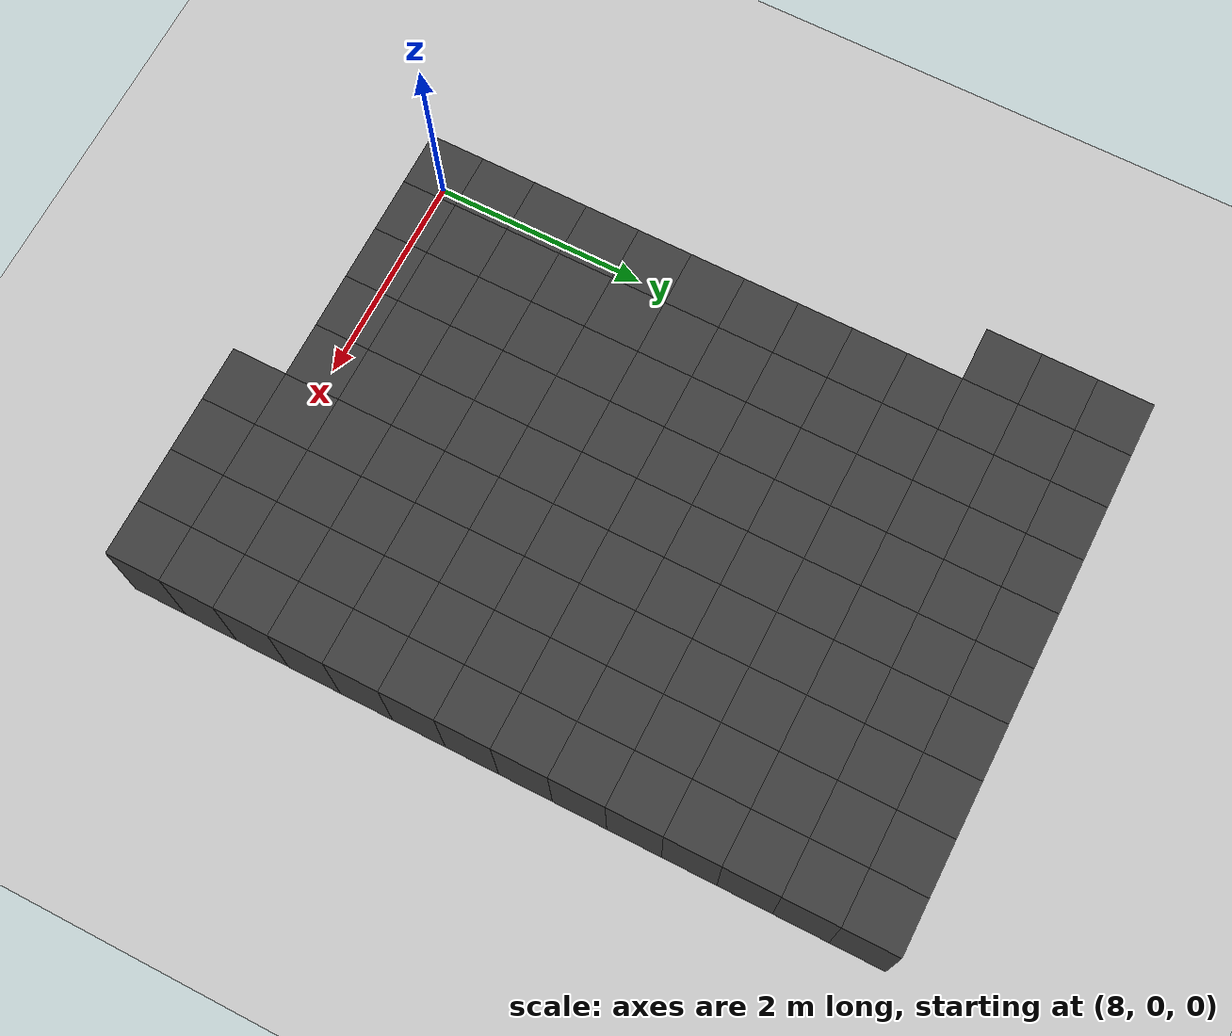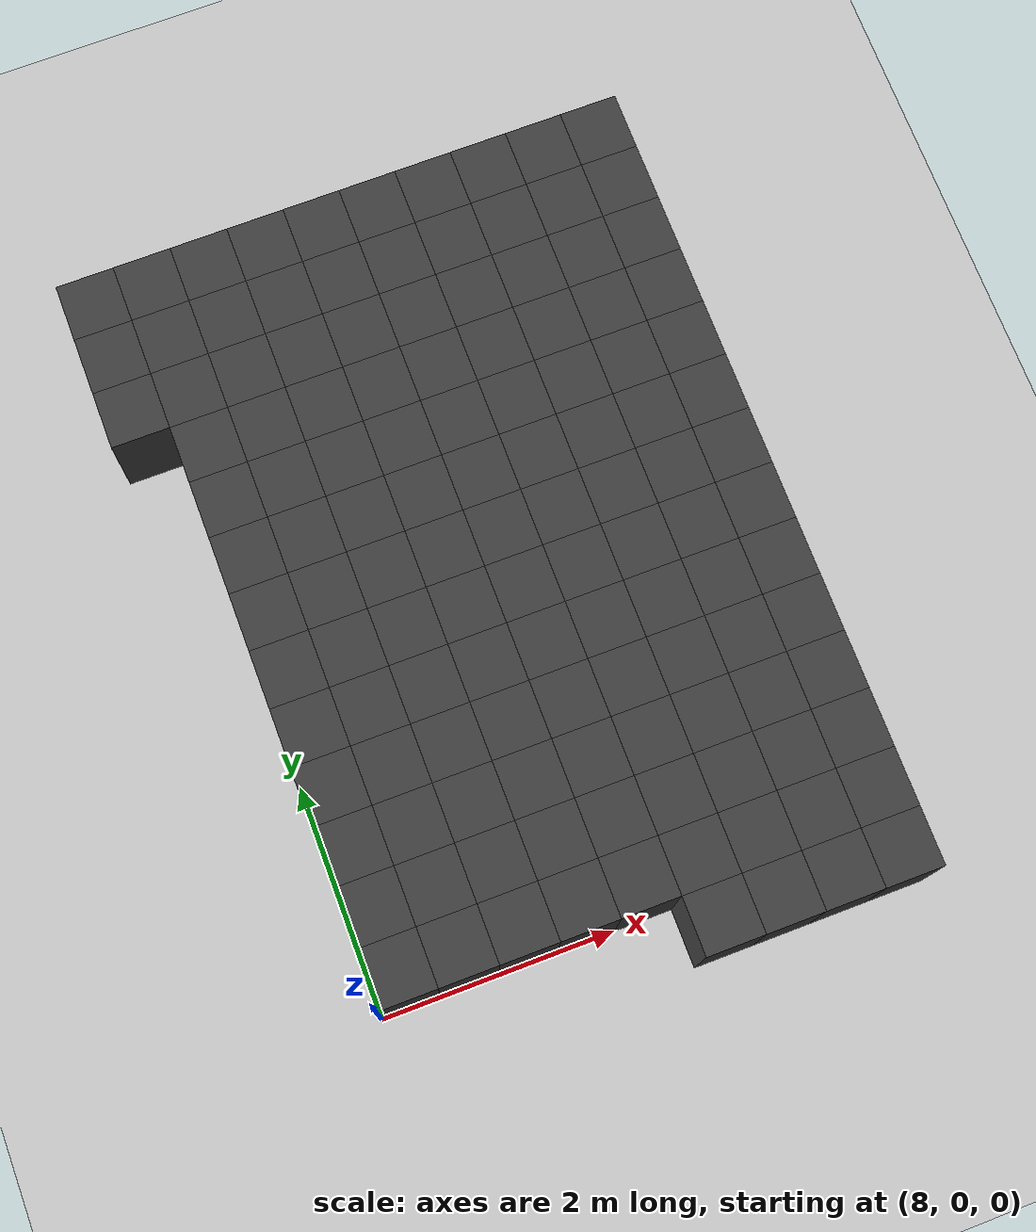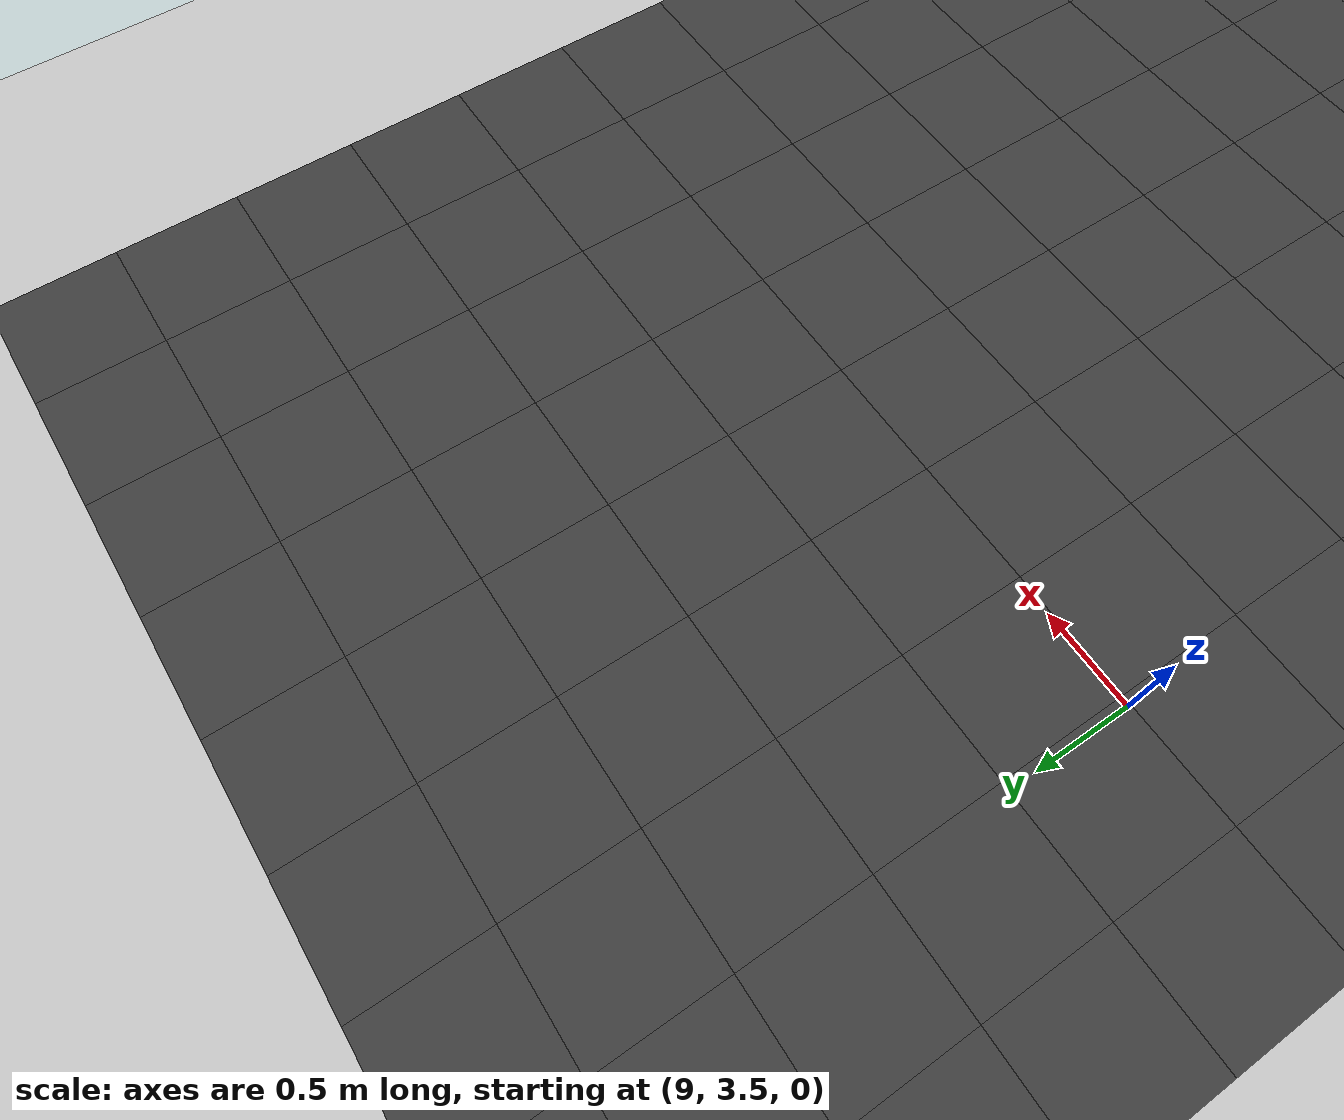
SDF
<sdf version="1.7">
 <world name="map_12818">
  <model name="ground_plane">
   <static>true</static>
   <link name="link">
    <collision name="collision">
     <geometry><plane><normal>0 0 1</normal><size>200 200</size></plane></geometry>
    </collision>
    <visual name="visual">
     <geometry><plane><normal>0 0 1</normal><size>200 200</size></plane></geometry>
     <material><ambient>0.8 0.8 0.8 1</ambient><diffuse>0.8 0.8 0.8 1</diffuse></material>
    </visual>
   </link>
  </model>
  <model name="maze_environment">
   <static>true</static>
   <link name="wall_599">
    <pose>7.750 6.250 0.500 0 0 0</pose>
    <collision name="col"><geometry><box><size>0.5 0.5 1.0</size></box></geometry></collision>
    <visual name="vis">
     <geometry><box><size>0.5 0.5 1.0</size></box></geometry>
     <material><ambient>0.15 0.15 0.15 1</ambient><diffuse>0.25 0.25 0.25 1</diffuse></material>
    </visual>
   </link>
   <link name="wall_600">
    <pose>8.250 6.250 0.500 0 0 0</pose>
    <collision name="col"><geometry><box><size>0.5 0.5 1.0</size></box></geometry></collision>
    <visual name="vis">
     <geometry><box><size>0.5 0.5 1.0</size></box></geometry>
     <material><ambient>0.15 0.15 0.15 1</ambient><diffuse>0.25 0.25 0.25 1</diffuse></material>
    </visual>
   </link>
   <link name="wall_601">
    <pose>8.750 6.250 0.500 0 0 0</pose>
    <collision name="col"><geometry><box><size>0.5 0.5 1.0</size></box></geometry></collision>
    <visual name="vis">
     <geometry><box><size>0.5 0.5 1.0</size></box></geometry>
     <material><ambient>0.15 0.15 0.15 1</ambient><diffuse>0.25 0.25 0.25 1</diffuse></material>
    </visual>
   </link>
   <link name="wall_602">
    <pose>9.250 6.250 0.500 0 0 0</pose>
    <collision name="col"><geometry><box><size>0.5 0.5 1.0</size></box></geometry></collision>
    <visual name="vis">
     <geometry><box><size>0.5 0.5 1.0</size></box></geometry>
     <material><ambient>0.15 0.15 0.15 1</ambient><diffuse>0.25 0.25 0.25 1</diffuse></material>
    </visual>
   </link>
   <link name="wall_603">
    <pose>9.750 6.250 0.500 0 0 0</pose>
    <collision name="col"><geometry><box><size>0.5 0.5 1.0</size></box></geometry></collision>
    <visual name="vis">
     <geometry><box><size>0.5 0.5 1.0</size></box></geometry>
     <material><ambient>0.15 0.15 0.15 1</ambient><diffuse>0.25 0.25 0.25 1</diffuse></material>
    </visual>
   </link>
   <link name="wall_604">
    <pose>10.250 6.250 0.500 0 0 0</pose>
    <collision name="col"><geometry><box><size>0.5 0.5 1.0</size></box></geometry></collision>
    <visual name="vis">
     <geometry><box><size>0.5 0.5 1.0</size></box></geometry>
     <material><ambient>0.15 0.15 0.15 1</ambient><diffuse>0.25 0.25 0.25 1</diffuse></material>
    </visual>
   </link>
   <link name="wall_605">
    <pose>10.750 6.250 0.500 0 0 0</pose>
    <collision name="col"><geometry><box><size>0.5 0.5 1.0</size></box></geometry></collision>
    <visual name="vis">
     <geometry><box><size>0.5 0.5 1.0</size></box></geometry>
     <material><ambient>0.15 0.15 0.15 1</ambient><diffuse>0.25 0.25 0.25 1</diffuse></material>
    </visual>
   </link>
   <link name="wall_606">
    <pose>11.250 6.250 0.500 0 0 0</pose>
    <collision name="col"><geometry><box><size>0.5 0.5 1.0</size></box></geometry></collision>
    <visual name="vis">
     <geometry><box><size>0.5 0.5 1.0</size></box></geometry>
     <material><ambient>0.15 0.15 0.15 1</ambient><diffuse>0.25 0.25 0.25 1</diffuse></material>
    </visual>
   </link>
   <link name="wall_607">
    <pose>11.750 6.250 0.500 0 0 0</pose>
    <collision name="col"><geometry><box><size>0.5 0.5 1.0</size></box></geometry></collision>
    <visual name="vis">
     <geometry><box><size>0.5 0.5 1.0</size></box></geometry>
     <material><ambient>0.15 0.15 0.15 1</ambient><diffuse>0.25 0.25 0.25 1</diffuse></material>
    </visual>
   </link>
   <link name="wall_608">
    <pose>12.250 6.250 0.500 0 0 0</pose>
    <collision name="col"><geometry><box><size>0.5 0.5 1.0</size></box></geometry></collision>
    <visual name="vis">
     <geometry><box><size>0.5 0.5 1.0</size></box></geometry>
     <material><ambient>0.15 0.15 0.15 1</ambient><diffuse>0.25 0.25 0.25 1</diffuse></material>
    </visual>
   </link>
   <link name="wall_647">
    <pose>7.750 5.750 0.500 0 0 0</pose>
    <collision name="col"><geometry><box><size>0.5 0.5 1.0</size></box></geometry></collision>
    <visual name="vis">
     <geometry><box><size>0.5 0.5 1.0</size></box></geometry>
     <material><ambient>0.15 0.15 0.15 1</ambient><diffuse>0.25 0.25 0.25 1</diffuse></material>
    </visual>
   </link>
   <link name="wall_648">
    <pose>8.250 5.750 0.500 0 0 0</pose>
    <collision name="col"><geometry><box><size>0.5 0.5 1.0</size></box></geometry></collision>
    <visual name="vis">
     <geometry><box><size>0.5 0.5 1.0</size></box></geometry>
     <material><ambient>0.15 0.15 0.15 1</ambient><diffuse>0.25 0.25 0.25 1</diffuse></material>
    </visual>
   </link>
   <link name="wall_649">
    <pose>8.750 5.750 0.500 0 0 0</pose>
    <collision name="col"><geometry><box><size>0.5 0.5 1.0</size></box></geometry></collision>
    <visual name="vis">
     <geometry><box><size>0.5 0.5 1.0</size></box></geometry>
     <material><ambient>0.15 0.15 0.15 1</ambient><diffuse>0.25 0.25 0.25 1</diffuse></material>
    </visual>
   </link>
   <link name="wall_650">
    <pose>9.250 5.750 0.500 0 0 0</pose>
    <collision name="col"><geometry><box><size>0.5 0.5 1.0</size></box></geometry></collision>
    <visual name="vis">
     <geometry><box><size>0.5 0.5 1.0</size></box></geometry>
     <material><ambient>0.15 0.15 0.15 1</ambient><diffuse>0.25 0.25 0.25 1</diffuse></material>
    </visual>
   </link>
   <link name="wall_651">
    <pose>9.750 5.750 0.500 0 0 0</pose>
    <collision name="col"><geometry><box><size>0.5 0.5 1.0</size></box></geometry></collision>
    <visual name="vis">
     <geometry><box><size>0.5 0.5 1.0</size></box></geometry>
     <material><ambient>0.15 0.15 0.15 1</ambient><diffuse>0.25 0.25 0.25 1</diffuse></material>
    </visual>
   </link>
   <link name="wall_652">
    <pose>10.250 5.750 0.500 0 0 0</pose>
    <collision name="col"><geometry><box><size>0.5 0.5 1.0</size></box></geometry></collision>
    <visual name="vis">
     <geometry><box><size>0.5 0.5 1.0</size></box></geometry>
     <material><ambient>0.15 0.15 0.15 1</ambient><diffuse>0.25 0.25 0.25 1</diffuse></material>
    </visual>
   </link>
   <link name="wall_653">
    <pose>10.750 5.750 0.500 0 0 0</pose>
    <collision name="col"><geometry><box><size>0.5 0.5 1.0</size></box></geometry></collision>
    <visual name="vis">
     <geometry><box><size>0.5 0.5 1.0</size></box></geometry>
     <material><ambient>0.15 0.15 0.15 1</ambient><diffuse>0.25 0.25 0.25 1</diffuse></material>
    </visual>
   </link>
   <link name="wall_654">
    <pose>11.250 5.750 0.500 0 0 0</pose>
    <collision name="col"><geometry><box><size>0.5 0.5 1.0</size></box></geometry></collision>
    <visual name="vis">
     <geometry><box><size>0.5 0.5 1.0</size></box></geometry>
     <material><ambient>0.15 0.15 0.15 1</ambient><diffuse>0.25 0.25 0.25 1</diffuse></material>
    </visual>
   </link>
   <link name="wall_655">
    <pose>11.750 5.750 0.500 0 0 0</pose>
    <collision name="col"><geometry><box><size>0.5 0.5 1.0</size></box></geometry></collision>
    <visual name="vis">
     <geometry><box><size>0.5 0.5 1.0</size></box></geometry>
     <material><ambient>0.15 0.15 0.15 1</ambient><diffuse>0.25 0.25 0.25 1</diffuse></material>
    </visual>
   </link>
   <link name="wall_656">
    <pose>12.250 5.750 0.500 0 0 0</pose>
    <collision name="col"><geometry><box><size>0.5 0.5 1.0</size></box></geometry></collision>
    <visual name="vis">
     <geometry><box><size>0.5 0.5 1.0</size></box></geometry>
     <material><ambient>0.15 0.15 0.15 1</ambient><diffuse>0.25 0.25 0.25 1</diffuse></material>
    </visual>
   </link>
   <link name="wall_695">
    <pose>7.750 5.250 0.500 0 0 0</pose>
    <collision name="col"><geometry><box><size>0.5 0.5 1.0</size></box></geometry></collision>
    <visual name="vis">
     <geometry><box><size>0.5 0.5 1.0</size></box></geometry>
     <material><ambient>0.15 0.15 0.15 1</ambient><diffuse>0.25 0.25 0.25 1</diffuse></material>
    </visual>
   </link>
   <link name="wall_696">
    <pose>8.250 5.250 0.500 0 0 0</pose>
    <collision name="col"><geometry><box><size>0.5 0.5 1.0</size></box></geometry></collision>
    <visual name="vis">
     <geometry><box><size>0.5 0.5 1.0</size></box></geometry>
     <material><ambient>0.15 0.15 0.15 1</ambient><diffuse>0.25 0.25 0.25 1</diffuse></material>
    </visual>
   </link>
   <link name="wall_697">
    <pose>8.750 5.250 0.500 0 0 0</pose>
    <collision name="col"><geometry><box><size>0.5 0.5 1.0</size></box></geometry></collision>
    <visual name="vis">
     <geometry><box><size>0.5 0.5 1.0</size></box></geometry>
     <material><ambient>0.15 0.15 0.15 1</ambient><diffuse>0.25 0.25 0.25 1</diffuse></material>
    </visual>
   </link>
   <link name="wall_698">
    <pose>9.250 5.250 0.500 0 0 0</pose>
    <collision name="col"><geometry><box><size>0.5 0.5 1.0</size></box></geometry></collision>
    <visual name="vis">
     <geometry><box><size>0.5 0.5 1.0</size></box></geometry>
     <material><ambient>0.15 0.15 0.15 1</ambient><diffuse>0.25 0.25 0.25 1</diffuse></material>
    </visual>
   </link>
   <link name="wall_699">
    <pose>9.750 5.250 0.500 0 0 0</pose>
    <collision name="col"><geometry><box><size>0.5 0.5 1.0</size></box></geometry></collision>
    <visual name="vis">
     <geometry><box><size>0.5 0.5 1.0</size></box></geometry>
     <material><ambient>0.15 0.15 0.15 1</ambient><diffuse>0.25 0.25 0.25 1</diffuse></material>
    </visual>
   </link>
   <link name="wall_700">
    <pose>10.250 5.250 0.500 0 0 0</pose>
    <collision name="col"><geometry><box><size>0.5 0.5 1.0</size></box></geometry></collision>
    <visual name="vis">
     <geometry><box><size>0.5 0.5 1.0</size></box></geometry>
     <material><ambient>0.15 0.15 0.15 1</ambient><diffuse>0.25 0.25 0.25 1</diffuse></material>
    </visual>
   </link>
   <link name="wall_701">
    <pose>10.750 5.250 0.500 0 0 0</pose>
    <collision name="col"><geometry><box><size>0.5 0.5 1.0</size></box></geometry></collision>
    <visual name="vis">
     <geometry><box><size>0.5 0.5 1.0</size></box></geometry>
     <material><ambient>0.15 0.15 0.15 1</ambient><diffuse>0.25 0.25 0.25 1</diffuse></material>
    </visual>
   </link>
   <link name="wall_702">
    <pose>11.250 5.250 0.500 0 0 0</pose>
    <collision name="col"><geometry><box><size>0.5 0.5 1.0</size></box></geometry></collision>
    <visual name="vis">
     <geometry><box><size>0.5 0.5 1.0</size></box></geometry>
     <material><ambient>0.15 0.15 0.15 1</ambient><diffuse>0.25 0.25 0.25 1</diffuse></material>
    </visual>
   </link>
   <link name="wall_703">
    <pose>11.750 5.250 0.500 0 0 0</pose>
    <collision name="col"><geometry><box><size>0.5 0.5 1.0</size></box></geometry></collision>
    <visual name="vis">
     <geometry><box><size>0.5 0.5 1.0</size></box></geometry>
     <material><ambient>0.15 0.15 0.15 1</ambient><diffuse>0.25 0.25 0.25 1</diffuse></material>
    </visual>
   </link>
   <link name="wall_704">
    <pose>12.250 5.250 0.500 0 0 0</pose>
    <collision name="col"><geometry><box><size>0.5 0.5 1.0</size></box></geometry></collision>
    <visual name="vis">
     <geometry><box><size>0.5 0.5 1.0</size></box></geometry>
     <material><ambient>0.15 0.15 0.15 1</ambient><diffuse>0.25 0.25 0.25 1</diffuse></material>
    </visual>
   </link>
   <link name="wall_744">
    <pose>8.250 4.750 0.500 0 0 0</pose>
    <collision name="col"><geometry><box><size>0.5 0.5 1.0</size></box></geometry></collision>
    <visual name="vis">
     <geometry><box><size>0.5 0.5 1.0</size></box></geometry>
     <material><ambient>0.15 0.15 0.15 1</ambient><diffuse>0.25 0.25 0.25 1</diffuse></material>
    </visual>
   </link>
   <link name="wall_745">
    <pose>8.750 4.750 0.500 0 0 0</pose>
    <collision name="col"><geometry><box><size>0.5 0.5 1.0</size></box></geometry></collision>
    <visual name="vis">
     <geometry><box><size>0.5 0.5 1.0</size></box></geometry>
     <material><ambient>0.15 0.15 0.15 1</ambient><diffuse>0.25 0.25 0.25 1</diffuse></material>
    </visual>
   </link>
   <link name="wall_746">
    <pose>9.250 4.750 0.500 0 0 0</pose>
    <collision name="col"><geometry><box><size>0.5 0.5 1.0</size></box></geometry></collision>
    <visual name="vis">
     <geometry><box><size>0.5 0.5 1.0</size></box></geometry>
     <material><ambient>0.15 0.15 0.15 1</ambient><diffuse>0.25 0.25 0.25 1</diffuse></material>
    </visual>
   </link>
   <link name="wall_747">
    <pose>9.750 4.750 0.500 0 0 0</pose>
    <collision name="col"><geometry><box><size>0.5 0.5 1.0</size></box></geometry></collision>
    <visual name="vis">
     <geometry><box><size>0.5 0.5 1.0</size></box></geometry>
     <material><ambient>0.15 0.15 0.15 1</ambient><diffuse>0.25 0.25 0.25 1</diffuse></material>
    </visual>
   </link>
   <link name="wall_748">
    <pose>10.250 4.750 0.500 0 0 0</pose>
    <collision name="col"><geometry><box><size>0.5 0.5 1.0</size></box></geometry></collision>
    <visual name="vis">
     <geometry><box><size>0.5 0.5 1.0</size></box></geometry>
     <material><ambient>0.15 0.15 0.15 1</ambient><diffuse>0.25 0.25 0.25 1</diffuse></material>
    </visual>
   </link>
   <link name="wall_749">
    <pose>10.750 4.750 0.500 0 0 0</pose>
    <collision name="col"><geometry><box><size>0.5 0.5 1.0</size></box></geometry></collision>
    <visual name="vis">
     <geometry><box><size>0.5 0.5 1.0</size></box></geometry>
     <material><ambient>0.15 0.15 0.15 1</ambient><diffuse>0.25 0.25 0.25 1</diffuse></material>
    </visual>
   </link>
   <link name="wall_750">
    <pose>11.250 4.750 0.500 0 0 0</pose>
    <collision name="col"><geometry><box><size>0.5 0.5 1.0</size></box></geometry></collision>
    <visual name="vis">
     <geometry><box><size>0.5 0.5 1.0</size></box></geometry>
     <material><ambient>0.15 0.15 0.15 1</ambient><diffuse>0.25 0.25 0.25 1</diffuse></material>
    </visual>
   </link>
   <link name="wall_751">
    <pose>11.750 4.750 0.500 0 0 0</pose>
    <collision name="col"><geometry><box><size>0.5 0.5 1.0</size></box></geometry></collision>
    <visual name="vis">
     <geometry><box><size>0.5 0.5 1.0</size></box></geometry>
     <material><ambient>0.15 0.15 0.15 1</ambient><diffuse>0.25 0.25 0.25 1</diffuse></material>
    </visual>
   </link>
   <link name="wall_752">
    <pose>12.250 4.750 0.500 0 0 0</pose>
    <collision name="col"><geometry><box><size>0.5 0.5 1.0</size></box></geometry></collision>
    <visual name="vis">
     <geometry><box><size>0.5 0.5 1.0</size></box></geometry>
     <material><ambient>0.15 0.15 0.15 1</ambient><diffuse>0.25 0.25 0.25 1</diffuse></material>
    </visual>
   </link>
   <link name="wall_792">
    <pose>8.250 4.250 0.500 0 0 0</pose>
    <collision name="col"><geometry><box><size>0.5 0.5 1.0</size></box></geometry></collision>
    <visual name="vis">
     <geometry><box><size>0.5 0.5 1.0</size></box></geometry>
     <material><ambient>0.15 0.15 0.15 1</ambient><diffuse>0.25 0.25 0.25 1</diffuse></material>
    </visual>
   </link>
   <link name="wall_793">
    <pose>8.750 4.250 0.500 0 0 0</pose>
    <collision name="col"><geometry><box><size>0.5 0.5 1.0</size></box></geometry></collision>
    <visual name="vis">
     <geometry><box><size>0.5 0.5 1.0</size></box></geometry>
     <material><ambient>0.15 0.15 0.15 1</ambient><diffuse>0.25 0.25 0.25 1</diffuse></material>
    </visual>
   </link>
   <link name="wall_794">
    <pose>9.250 4.250 0.500 0 0 0</pose>
    <collision name="col"><geometry><box><size>0.5 0.5 1.0</size></box></geometry></collision>
    <visual name="vis">
     <geometry><box><size>0.5 0.5 1.0</size></box></geometry>
     <material><ambient>0.15 0.15 0.15 1</ambient><diffuse>0.25 0.25 0.25 1</diffuse></material>
    </visual>
   </link>
   <link name="wall_795">
    <pose>9.750 4.250 0.500 0 0 0</pose>
    <collision name="col"><geometry><box><size>0.5 0.5 1.0</size></box></geometry></collision>
    <visual name="vis">
     <geometry><box><size>0.5 0.5 1.0</size></box></geometry>
     <material><ambient>0.15 0.15 0.15 1</ambient><diffuse>0.25 0.25 0.25 1</diffuse></material>
    </visual>
   </link>
   <link name="wall_796">
    <pose>10.250 4.250 0.500 0 0 0</pose>
    <collision name="col"><geometry><box><size>0.5 0.5 1.0</size></box></geometry></collision>
    <visual name="vis">
     <geometry><box><size>0.5 0.5 1.0</size></box></geometry>
     <material><ambient>0.15 0.15 0.15 1</ambient><diffuse>0.25 0.25 0.25 1</diffuse></material>
    </visual>
   </link>
   <link name="wall_797">
    <pose>10.750 4.250 0.500 0 0 0</pose>
    <collision name="col"><geometry><box><size>0.5 0.5 1.0</size></box></geometry></collision>
    <visual name="vis">
     <geometry><box><size>0.5 0.5 1.0</size></box></geometry>
     <material><ambient>0.15 0.15 0.15 1</ambient><diffuse>0.25 0.25 0.25 1</diffuse></material>
    </visual>
   </link>
   <link name="wall_798">
    <pose>11.250 4.250 0.500 0 0 0</pose>
    <collision name="col"><geometry><box><size>0.5 0.5 1.0</size></box></geometry></collision>
    <visual name="vis">
     <geometry><box><size>0.5 0.5 1.0</size></box></geometry>
     <material><ambient>0.15 0.15 0.15 1</ambient><diffuse>0.25 0.25 0.25 1</diffuse></material>
    </visual>
   </link>
   <link name="wall_799">
    <pose>11.750 4.250 0.500 0 0 0</pose>
    <collision name="col"><geometry><box><size>0.5 0.5 1.0</size></box></geometry></collision>
    <visual name="vis">
     <geometry><box><size>0.5 0.5 1.0</size></box></geometry>
     <material><ambient>0.15 0.15 0.15 1</ambient><diffuse>0.25 0.25 0.25 1</diffuse></material>
    </visual>
   </link>
   <link name="wall_800">
    <pose>12.250 4.250 0.500 0 0 0</pose>
    <collision name="col"><geometry><box><size>0.5 0.5 1.0</size></box></geometry></collision>
    <visual name="vis">
     <geometry><box><size>0.5 0.5 1.0</size></box></geometry>
     <material><ambient>0.15 0.15 0.15 1</ambient><diffuse>0.25 0.25 0.25 1</diffuse></material>
    </visual>
   </link>
   <link name="wall_833">
    <pose>8.250 3.750 0.500 0 0 0</pose>
    <collision name="col"><geometry><box><size>0.5 0.5 1.0</size></box></geometry></collision>
    <visual name="vis">
     <geometry><box><size>0.5 0.5 1.0</size></box></geometry>
     <material><ambient>0.15 0.15 0.15 1</ambient><diffuse>0.25 0.25 0.25 1</diffuse></material>
    </visual>
   </link>
   <link name="wall_834">
    <pose>8.750 3.750 0.500 0 0 0</pose>
    <collision name="col"><geometry><box><size>0.5 0.5 1.0</size></box></geometry></collision>
    <visual name="vis">
     <geometry><box><size>0.5 0.5 1.0</size></box></geometry>
     <material><ambient>0.15 0.15 0.15 1</ambient><diffuse>0.25 0.25 0.25 1</diffuse></material>
    </visual>
   </link>
   <link name="wall_835">
    <pose>9.250 3.750 0.500 0 0 0</pose>
    <collision name="col"><geometry><box><size>0.5 0.5 1.0</size></box></geometry></collision>
    <visual name="vis">
     <geometry><box><size>0.5 0.5 1.0</size></box></geometry>
     <material><ambient>0.15 0.15 0.15 1</ambient><diffuse>0.25 0.25 0.25 1</diffuse></material>
    </visual>
   </link>
   <link name="wall_836">
    <pose>9.750 3.750 0.500 0 0 0</pose>
    <collision name="col"><geometry><box><size>0.5 0.5 1.0</size></box></geometry></collision>
    <visual name="vis">
     <geometry><box><size>0.5 0.5 1.0</size></box></geometry>
     <material><ambient>0.15 0.15 0.15 1</ambient><diffuse>0.25 0.25 0.25 1</diffuse></material>
    </visual>
   </link>
   <link name="wall_837">
    <pose>10.250 3.750 0.500 0 0 0</pose>
    <collision name="col"><geometry><box><size>0.5 0.5 1.0</size></box></geometry></collision>
    <visual name="vis">
     <geometry><box><size>0.5 0.5 1.0</size></box></geometry>
     <material><ambient>0.15 0.15 0.15 1</ambient><diffuse>0.25 0.25 0.25 1</diffuse></material>
    </visual>
   </link>
   <link name="wall_838">
    <pose>10.750 3.750 0.500 0 0 0</pose>
    <collision name="col"><geometry><box><size>0.5 0.5 1.0</size></box></geometry></collision>
    <visual name="vis">
     <geometry><box><size>0.5 0.5 1.0</size></box></geometry>
     <material><ambient>0.15 0.15 0.15 1</ambient><diffuse>0.25 0.25 0.25 1</diffuse></material>
    </visual>
   </link>
   <link name="wall_839">
    <pose>11.250 3.750 0.500 0 0 0</pose>
    <collision name="col"><geometry><box><size>0.5 0.5 1.0</size></box></geometry></collision>
    <visual name="vis">
     <geometry><box><size>0.5 0.5 1.0</size></box></geometry>
     <material><ambient>0.15 0.15 0.15 1</ambient><diffuse>0.25 0.25 0.25 1</diffuse></material>
    </visual>
   </link>
   <link name="wall_840">
    <pose>11.750 3.750 0.500 0 0 0</pose>
    <collision name="col"><geometry><box><size>0.5 0.5 1.0</size></box></geometry></collision>
    <visual name="vis">
     <geometry><box><size>0.5 0.5 1.0</size></box></geometry>
     <material><ambient>0.15 0.15 0.15 1</ambient><diffuse>0.25 0.25 0.25 1</diffuse></material>
    </visual>
   </link>
   <link name="wall_841">
    <pose>12.250 3.750 0.500 0 0 0</pose>
    <collision name="col"><geometry><box><size>0.5 0.5 1.0</size></box></geometry></collision>
    <visual name="vis">
     <geometry><box><size>0.5 0.5 1.0</size></box></geometry>
     <material><ambient>0.15 0.15 0.15 1</ambient><diffuse>0.25 0.25 0.25 1</diffuse></material>
    </visual>
   </link>
   <link name="wall_874">
    <pose>8.250 3.250 0.500 0 0 0</pose>
    <collision name="col"><geometry><box><size>0.5 0.5 1.0</size></box></geometry></collision>
    <visual name="vis">
     <geometry><box><size>0.5 0.5 1.0</size></box></geometry>
     <material><ambient>0.15 0.15 0.15 1</ambient><diffuse>0.25 0.25 0.25 1</diffuse></material>
    </visual>
   </link>
   <link name="wall_875">
    <pose>8.750 3.250 0.500 0 0 0</pose>
    <collision name="col"><geometry><box><size>0.5 0.5 1.0</size></box></geometry></collision>
    <visual name="vis">
     <geometry><box><size>0.5 0.5 1.0</size></box></geometry>
     <material><ambient>0.15 0.15 0.15 1</ambient><diffuse>0.25 0.25 0.25 1</diffuse></material>
    </visual>
   </link>
   <link name="wall_876">
    <pose>9.250 3.250 0.500 0 0 0</pose>
    <collision name="col"><geometry><box><size>0.5 0.5 1.0</size></box></geometry></collision>
    <visual name="vis">
     <geometry><box><size>0.5 0.5 1.0</size></box></geometry>
     <material><ambient>0.15 0.15 0.15 1</ambient><diffuse>0.25 0.25 0.25 1</diffuse></material>
    </visual>
   </link>
   <link name="wall_877">
    <pose>9.750 3.250 0.500 0 0 0</pose>
    <collision name="col"><geometry><box><size>0.5 0.5 1.0</size></box></geometry></collision>
    <visual name="vis">
     <geometry><box><size>0.5 0.5 1.0</size></box></geometry>
     <material><ambient>0.15 0.15 0.15 1</ambient><diffuse>0.25 0.25 0.25 1</diffuse></material>
    </visual>
   </link>
   <link name="wall_878">
    <pose>10.250 3.250 0.500 0 0 0</pose>
    <collision name="col"><geometry><box><size>0.5 0.5 1.0</size></box></geometry></collision>
    <visual name="vis">
     <geometry><box><size>0.5 0.5 1.0</size></box></geometry>
     <material><ambient>0.15 0.15 0.15 1</ambient><diffuse>0.25 0.25 0.25 1</diffuse></material>
    </visual>
   </link>
   <link name="wall_879">
    <pose>10.750 3.250 0.500 0 0 0</pose>
    <collision name="col"><geometry><box><size>0.5 0.5 1.0</size></box></geometry></collision>
    <visual name="vis">
     <geometry><box><size>0.5 0.5 1.0</size></box></geometry>
     <material><ambient>0.15 0.15 0.15 1</ambient><diffuse>0.25 0.25 0.25 1</diffuse></material>
    </visual>
   </link>
   <link name="wall_880">
    <pose>11.250 3.250 0.500 0 0 0</pose>
    <collision name="col"><geometry><box><size>0.5 0.5 1.0</size></box></geometry></collision>
    <visual name="vis">
     <geometry><box><size>0.5 0.5 1.0</size></box></geometry>
     <material><ambient>0.15 0.15 0.15 1</ambient><diffuse>0.25 0.25 0.25 1</diffuse></material>
    </visual>
   </link>
   <link name="wall_881">
    <pose>11.750 3.250 0.500 0 0 0</pose>
    <collision name="col"><geometry><box><size>0.5 0.5 1.0</size></box></geometry></collision>
    <visual name="vis">
     <geometry><box><size>0.5 0.5 1.0</size></box></geometry>
     <material><ambient>0.15 0.15 0.15 1</ambient><diffuse>0.25 0.25 0.25 1</diffuse></material>
    </visual>
   </link>
   <link name="wall_882">
    <pose>12.250 3.250 0.500 0 0 0</pose>
    <collision name="col"><geometry><box><size>0.5 0.5 1.0</size></box></geometry></collision>
    <visual name="vis">
     <geometry><box><size>0.5 0.5 1.0</size></box></geometry>
     <material><ambient>0.15 0.15 0.15 1</ambient><diffuse>0.25 0.25 0.25 1</diffuse></material>
    </visual>
   </link>
   <link name="wall_915">
    <pose>8.250 2.750 0.500 0 0 0</pose>
    <collision name="col"><geometry><box><size>0.5 0.5 1.0</size></box></geometry></collision>
    <visual name="vis">
     <geometry><box><size>0.5 0.5 1.0</size></box></geometry>
     <material><ambient>0.15 0.15 0.15 1</ambient><diffuse>0.25 0.25 0.25 1</diffuse></material>
    </visual>
   </link>
   <link name="wall_916">
    <pose>8.750 2.750 0.500 0 0 0</pose>
    <collision name="col"><geometry><box><size>0.5 0.5 1.0</size></box></geometry></collision>
    <visual name="vis">
     <geometry><box><size>0.5 0.5 1.0</size></box></geometry>
     <material><ambient>0.15 0.15 0.15 1</ambient><diffuse>0.25 0.25 0.25 1</diffuse></material>
    </visual>
   </link>
   <link name="wall_917">
    <pose>9.250 2.750 0.500 0 0 0</pose>
    <collision name="col"><geometry><box><size>0.5 0.5 1.0</size></box></geometry></collision>
    <visual name="vis">
     <geometry><box><size>0.5 0.5 1.0</size></box></geometry>
     <material><ambient>0.15 0.15 0.15 1</ambient><diffuse>0.25 0.25 0.25 1</diffuse></material>
    </visual>
   </link>
   <link name="wall_918">
    <pose>9.750 2.750 0.500 0 0 0</pose>
    <collision name="col"><geometry><box><size>0.5 0.5 1.0</size></box></geometry></collision>
    <visual name="vis">
     <geometry><box><size>0.5 0.5 1.0</size></box></geometry>
     <material><ambient>0.15 0.15 0.15 1</ambient><diffuse>0.25 0.25 0.25 1</diffuse></material>
    </visual>
   </link>
   <link name="wall_919">
    <pose>10.250 2.750 0.500 0 0 0</pose>
    <collision name="col"><geometry><box><size>0.5 0.5 1.0</size></box></geometry></collision>
    <visual name="vis">
     <geometry><box><size>0.5 0.5 1.0</size></box></geometry>
     <material><ambient>0.15 0.15 0.15 1</ambient><diffuse>0.25 0.25 0.25 1</diffuse></material>
    </visual>
   </link>
   <link name="wall_920">
    <pose>10.750 2.750 0.500 0 0 0</pose>
    <collision name="col"><geometry><box><size>0.5 0.5 1.0</size></box></geometry></collision>
    <visual name="vis">
     <geometry><box><size>0.5 0.5 1.0</size></box></geometry>
     <material><ambient>0.15 0.15 0.15 1</ambient><diffuse>0.25 0.25 0.25 1</diffuse></material>
    </visual>
   </link>
   <link name="wall_921">
    <pose>11.250 2.750 0.500 0 0 0</pose>
    <collision name="col"><geometry><box><size>0.5 0.5 1.0</size></box></geometry></collision>
    <visual name="vis">
     <geometry><box><size>0.5 0.5 1.0</size></box></geometry>
     <material><ambient>0.15 0.15 0.15 1</ambient><diffuse>0.25 0.25 0.25 1</diffuse></material>
    </visual>
   </link>
   <link name="wall_922">
    <pose>11.750 2.750 0.500 0 0 0</pose>
    <collision name="col"><geometry><box><size>0.5 0.5 1.0</size></box></geometry></collision>
    <visual name="vis">
     <geometry><box><size>0.5 0.5 1.0</size></box></geometry>
     <material><ambient>0.15 0.15 0.15 1</ambient><diffuse>0.25 0.25 0.25 1</diffuse></material>
    </visual>
   </link>
   <link name="wall_923">
    <pose>12.250 2.750 0.500 0 0 0</pose>
    <collision name="col"><geometry><box><size>0.5 0.5 1.0</size></box></geometry></collision>
    <visual name="vis">
     <geometry><box><size>0.5 0.5 1.0</size></box></geometry>
     <material><ambient>0.15 0.15 0.15 1</ambient><diffuse>0.25 0.25 0.25 1</diffuse></material>
    </visual>
   </link>
   <link name="wall_956">
    <pose>8.250 2.250 0.500 0 0 0</pose>
    <collision name="col"><geometry><box><size>0.5 0.5 1.0</size></box></geometry></collision>
    <visual name="vis">
     <geometry><box><size>0.5 0.5 1.0</size></box></geometry>
     <material><ambient>0.15 0.15 0.15 1</ambient><diffuse>0.25 0.25 0.25 1</diffuse></material>
    </visual>
   </link>
   <link name="wall_957">
    <pose>8.750 2.250 0.500 0 0 0</pose>
    <collision name="col"><geometry><box><size>0.5 0.5 1.0</size></box></geometry></collision>
    <visual name="vis">
     <geometry><box><size>0.5 0.5 1.0</size></box></geometry>
     <material><ambient>0.15 0.15 0.15 1</ambient><diffuse>0.25 0.25 0.25 1</diffuse></material>
    </visual>
   </link>
   <link name="wall_958">
    <pose>9.250 2.250 0.500 0 0 0</pose>
    <collision name="col"><geometry><box><size>0.5 0.5 1.0</size></box></geometry></collision>
    <visual name="vis">
     <geometry><box><size>0.5 0.5 1.0</size></box></geometry>
     <material><ambient>0.15 0.15 0.15 1</ambient><diffuse>0.25 0.25 0.25 1</diffuse></material>
    </visual>
   </link>
   <link name="wall_959">
    <pose>9.750 2.250 0.500 0 0 0</pose>
    <collision name="col"><geometry><box><size>0.5 0.5 1.0</size></box></geometry></collision>
    <visual name="vis">
     <geometry><box><size>0.5 0.5 1.0</size></box></geometry>
     <material><ambient>0.15 0.15 0.15 1</ambient><diffuse>0.25 0.25 0.25 1</diffuse></material>
    </visual>
   </link>
   <link name="wall_960">
    <pose>10.250 2.250 0.500 0 0 0</pose>
    <collision name="col"><geometry><box><size>0.5 0.5 1.0</size></box></geometry></collision>
    <visual name="vis">
     <geometry><box><size>0.5 0.5 1.0</size></box></geometry>
     <material><ambient>0.15 0.15 0.15 1</ambient><diffuse>0.25 0.25 0.25 1</diffuse></material>
    </visual>
   </link>
   <link name="wall_961">
    <pose>10.750 2.250 0.500 0 0 0</pose>
    <collision name="col"><geometry><box><size>0.5 0.5 1.0</size></box></geometry></collision>
    <visual name="vis">
     <geometry><box><size>0.5 0.5 1.0</size></box></geometry>
     <material><ambient>0.15 0.15 0.15 1</ambient><diffuse>0.25 0.25 0.25 1</diffuse></material>
    </visual>
   </link>
   <link name="wall_962">
    <pose>11.250 2.250 0.500 0 0 0</pose>
    <collision name="col"><geometry><box><size>0.5 0.5 1.0</size></box></geometry></collision>
    <visual name="vis">
     <geometry><box><size>0.5 0.5 1.0</size></box></geometry>
     <material><ambient>0.15 0.15 0.15 1</ambient><diffuse>0.25 0.25 0.25 1</diffuse></material>
    </visual>
   </link>
   <link name="wall_963">
    <pose>11.750 2.250 0.500 0 0 0</pose>
    <collision name="col"><geometry><box><size>0.5 0.5 1.0</size></box></geometry></collision>
    <visual name="vis">
     <geometry><box><size>0.5 0.5 1.0</size></box></geometry>
     <material><ambient>0.15 0.15 0.15 1</ambient><diffuse>0.25 0.25 0.25 1</diffuse></material>
    </visual>
   </link>
   <link name="wall_964">
    <pose>12.250 2.250 0.500 0 0 0</pose>
    <collision name="col"><geometry><box><size>0.5 0.5 1.0</size></box></geometry></collision>
    <visual name="vis">
     <geometry><box><size>0.5 0.5 1.0</size></box></geometry>
     <material><ambient>0.15 0.15 0.15 1</ambient><diffuse>0.25 0.25 0.25 1</diffuse></material>
    </visual>
   </link>
   <link name="wall_994">
    <pose>8.250 1.750 0.500 0 0 0</pose>
    <collision name="col"><geometry><box><size>0.5 0.5 1.0</size></box></geometry></collision>
    <visual name="vis">
     <geometry><box><size>0.5 0.5 1.0</size></box></geometry>
     <material><ambient>0.15 0.15 0.15 1</ambient><diffuse>0.25 0.25 0.25 1</diffuse></material>
    </visual>
   </link>
   <link name="wall_995">
    <pose>8.750 1.750 0.500 0 0 0</pose>
    <collision name="col"><geometry><box><size>0.5 0.5 1.0</size></box></geometry></collision>
    <visual name="vis">
     <geometry><box><size>0.5 0.5 1.0</size></box></geometry>
     <material><ambient>0.15 0.15 0.15 1</ambient><diffuse>0.25 0.25 0.25 1</diffuse></material>
    </visual>
   </link>
   <link name="wall_996">
    <pose>9.250 1.750 0.500 0 0 0</pose>
    <collision name="col"><geometry><box><size>0.5 0.5 1.0</size></box></geometry></collision>
    <visual name="vis">
     <geometry><box><size>0.5 0.5 1.0</size></box></geometry>
     <material><ambient>0.15 0.15 0.15 1</ambient><diffuse>0.25 0.25 0.25 1</diffuse></material>
    </visual>
   </link>
   <link name="wall_997">
    <pose>9.750 1.750 0.500 0 0 0</pose>
    <collision name="col"><geometry><box><size>0.5 0.5 1.0</size></box></geometry></collision>
    <visual name="vis">
     <geometry><box><size>0.5 0.5 1.0</size></box></geometry>
     <material><ambient>0.15 0.15 0.15 1</ambient><diffuse>0.25 0.25 0.25 1</diffuse></material>
    </visual>
   </link>
   <link name="wall_998">
    <pose>10.250 1.750 0.500 0 0 0</pose>
    <collision name="col"><geometry><box><size>0.5 0.5 1.0</size></box></geometry></collision>
    <visual name="vis">
     <geometry><box><size>0.5 0.5 1.0</size></box></geometry>
     <material><ambient>0.15 0.15 0.15 1</ambient><diffuse>0.25 0.25 0.25 1</diffuse></material>
    </visual>
   </link>
   <link name="wall_999">
    <pose>10.750 1.750 0.500 0 0 0</pose>
    <collision name="col"><geometry><box><size>0.5 0.5 1.0</size></box></geometry></collision>
    <visual name="vis">
     <geometry><box><size>0.5 0.5 1.0</size></box></geometry>
     <material><ambient>0.15 0.15 0.15 1</ambient><diffuse>0.25 0.25 0.25 1</diffuse></material>
    </visual>
   </link>
   <link name="wall_1000">
    <pose>11.250 1.750 0.500 0 0 0</pose>
    <collision name="col"><geometry><box><size>0.5 0.5 1.0</size></box></geometry></collision>
    <visual name="vis">
     <geometry><box><size>0.5 0.5 1.0</size></box></geometry>
     <material><ambient>0.15 0.15 0.15 1</ambient><diffuse>0.25 0.25 0.25 1</diffuse></material>
    </visual>
   </link>
   <link name="wall_1001">
    <pose>11.750 1.750 0.500 0 0 0</pose>
    <collision name="col"><geometry><box><size>0.5 0.5 1.0</size></box></geometry></collision>
    <visual name="vis">
     <geometry><box><size>0.5 0.5 1.0</size></box></geometry>
     <material><ambient>0.15 0.15 0.15 1</ambient><diffuse>0.25 0.25 0.25 1</diffuse></material>
    </visual>
   </link>
   <link name="wall_1002">
    <pose>12.250 1.750 0.500 0 0 0</pose>
    <collision name="col"><geometry><box><size>0.5 0.5 1.0</size></box></geometry></collision>
    <visual name="vis">
     <geometry><box><size>0.5 0.5 1.0</size></box></geometry>
     <material><ambient>0.15 0.15 0.15 1</ambient><diffuse>0.25 0.25 0.25 1</diffuse></material>
    </visual>
   </link>
   <link name="wall_1028">
    <pose>8.250 1.250 0.500 0 0 0</pose>
    <collision name="col"><geometry><box><size>0.5 0.5 1.0</size></box></geometry></collision>
    <visual name="vis">
     <geometry><box><size>0.5 0.5 1.0</size></box></geometry>
     <material><ambient>0.15 0.15 0.15 1</ambient><diffuse>0.25 0.25 0.25 1</diffuse></material>
    </visual>
   </link>
   <link name="wall_1029">
    <pose>8.750 1.250 0.500 0 0 0</pose>
    <collision name="col"><geometry><box><size>0.5 0.5 1.0</size></box></geometry></collision>
    <visual name="vis">
     <geometry><box><size>0.5 0.5 1.0</size></box></geometry>
     <material><ambient>0.15 0.15 0.15 1</ambient><diffuse>0.25 0.25 0.25 1</diffuse></material>
    </visual>
   </link>
   <link name="wall_1030">
    <pose>9.250 1.250 0.500 0 0 0</pose>
    <collision name="col"><geometry><box><size>0.5 0.5 1.0</size></box></geometry></collision>
    <visual name="vis">
     <geometry><box><size>0.5 0.5 1.0</size></box></geometry>
     <material><ambient>0.15 0.15 0.15 1</ambient><diffuse>0.25 0.25 0.25 1</diffuse></material>
    </visual>
   </link>
   <link name="wall_1031">
    <pose>9.750 1.250 0.500 0 0 0</pose>
    <collision name="col"><geometry><box><size>0.5 0.5 1.0</size></box></geometry></collision>
    <visual name="vis">
     <geometry><box><size>0.5 0.5 1.0</size></box></geometry>
     <material><ambient>0.15 0.15 0.15 1</ambient><diffuse>0.25 0.25 0.25 1</diffuse></material>
    </visual>
   </link>
   <link name="wall_1032">
    <pose>10.250 1.250 0.500 0 0 0</pose>
    <collision name="col"><geometry><box><size>0.5 0.5 1.0</size></box></geometry></collision>
    <visual name="vis">
     <geometry><box><size>0.5 0.5 1.0</size></box></geometry>
     <material><ambient>0.15 0.15 0.15 1</ambient><diffuse>0.25 0.25 0.25 1</diffuse></material>
    </visual>
   </link>
   <link name="wall_1033">
    <pose>10.750 1.250 0.500 0 0 0</pose>
    <collision name="col"><geometry><box><size>0.5 0.5 1.0</size></box></geometry></collision>
    <visual name="vis">
     <geometry><box><size>0.5 0.5 1.0</size></box></geometry>
     <material><ambient>0.15 0.15 0.15 1</ambient><diffuse>0.25 0.25 0.25 1</diffuse></material>
    </visual>
   </link>
   <link name="wall_1034">
    <pose>11.250 1.250 0.500 0 0 0</pose>
    <collision name="col"><geometry><box><size>0.5 0.5 1.0</size></box></geometry></collision>
    <visual name="vis">
     <geometry><box><size>0.5 0.5 1.0</size></box></geometry>
     <material><ambient>0.15 0.15 0.15 1</ambient><diffuse>0.25 0.25 0.25 1</diffuse></material>
    </visual>
   </link>
   <link name="wall_1035">
    <pose>11.750 1.250 0.500 0 0 0</pose>
    <collision name="col"><geometry><box><size>0.5 0.5 1.0</size></box></geometry></collision>
    <visual name="vis">
     <geometry><box><size>0.5 0.5 1.0</size></box></geometry>
     <material><ambient>0.15 0.15 0.15 1</ambient><diffuse>0.25 0.25 0.25 1</diffuse></material>
    </visual>
   </link>
   <link name="wall_1036">
    <pose>12.250 1.250 0.500 0 0 0</pose>
    <collision name="col"><geometry><box><size>0.5 0.5 1.0</size></box></geometry></collision>
    <visual name="vis">
     <geometry><box><size>0.5 0.5 1.0</size></box></geometry>
     <material><ambient>0.15 0.15 0.15 1</ambient><diffuse>0.25 0.25 0.25 1</diffuse></material>
    </visual>
   </link>
   <link name="wall_1058">
    <pose>8.250 0.750 0.500 0 0 0</pose>
    <collision name="col"><geometry><box><size>0.5 0.5 1.0</size></box></geometry></collision>
    <visual name="vis">
     <geometry><box><size>0.5 0.5 1.0</size></box></geometry>
     <material><ambient>0.15 0.15 0.15 1</ambient><diffuse>0.25 0.25 0.25 1</diffuse></material>
    </visual>
   </link>
   <link name="wall_1059">
    <pose>8.750 0.750 0.500 0 0 0</pose>
    <collision name="col"><geometry><box><size>0.5 0.5 1.0</size></box></geometry></collision>
    <visual name="vis">
     <geometry><box><size>0.5 0.5 1.0</size></box></geometry>
     <material><ambient>0.15 0.15 0.15 1</ambient><diffuse>0.25 0.25 0.25 1</diffuse></material>
    </visual>
   </link>
   <link name="wall_1060">
    <pose>9.250 0.750 0.500 0 0 0</pose>
    <collision name="col"><geometry><box><size>0.5 0.5 1.0</size></box></geometry></collision>
    <visual name="vis">
     <geometry><box><size>0.5 0.5 1.0</size></box></geometry>
     <material><ambient>0.15 0.15 0.15 1</ambient><diffuse>0.25 0.25 0.25 1</diffuse></material>
    </visual>
   </link>
   <link name="wall_1061">
    <pose>9.750 0.750 0.500 0 0 0</pose>
    <collision name="col"><geometry><box><size>0.5 0.5 1.0</size></box></geometry></collision>
    <visual name="vis">
     <geometry><box><size>0.5 0.5 1.0</size></box></geometry>
     <material><ambient>0.15 0.15 0.15 1</ambient><diffuse>0.25 0.25 0.25 1</diffuse></material>
    </visual>
   </link>
   <link name="wall_1062">
    <pose>10.250 0.750 0.500 0 0 0</pose>
    <collision name="col"><geometry><box><size>0.5 0.5 1.0</size></box></geometry></collision>
    <visual name="vis">
     <geometry><box><size>0.5 0.5 1.0</size></box></geometry>
     <material><ambient>0.15 0.15 0.15 1</ambient><diffuse>0.25 0.25 0.25 1</diffuse></material>
    </visual>
   </link>
   <link name="wall_1063">
    <pose>10.750 0.750 0.500 0 0 0</pose>
    <collision name="col"><geometry><box><size>0.5 0.5 1.0</size></box></geometry></collision>
    <visual name="vis">
     <geometry><box><size>0.5 0.5 1.0</size></box></geometry>
     <material><ambient>0.15 0.15 0.15 1</ambient><diffuse>0.25 0.25 0.25 1</diffuse></material>
    </visual>
   </link>
   <link name="wall_1064">
    <pose>11.250 0.750 0.500 0 0 0</pose>
    <collision name="col"><geometry><box><size>0.5 0.5 1.0</size></box></geometry></collision>
    <visual name="vis">
     <geometry><box><size>0.5 0.5 1.0</size></box></geometry>
     <material><ambient>0.15 0.15 0.15 1</ambient><diffuse>0.25 0.25 0.25 1</diffuse></material>
    </visual>
   </link>
   <link name="wall_1065">
    <pose>11.750 0.750 0.500 0 0 0</pose>
    <collision name="col"><geometry><box><size>0.5 0.5 1.0</size></box></geometry></collision>
    <visual name="vis">
     <geometry><box><size>0.5 0.5 1.0</size></box></geometry>
     <material><ambient>0.15 0.15 0.15 1</ambient><diffuse>0.25 0.25 0.25 1</diffuse></material>
    </visual>
   </link>
   <link name="wall_1066">
    <pose>12.250 0.750 0.500 0 0 0</pose>
    <collision name="col"><geometry><box><size>0.5 0.5 1.0</size></box></geometry></collision>
    <visual name="vis">
     <geometry><box><size>0.5 0.5 1.0</size></box></geometry>
     <material><ambient>0.15 0.15 0.15 1</ambient><diffuse>0.25 0.25 0.25 1</diffuse></material>
    </visual>
   </link>
   <link name="wall_1088">
    <pose>8.250 0.250 0.500 0 0 0</pose>
    <collision name="col"><geometry><box><size>0.5 0.5 1.0</size></box></geometry></collision>
    <visual name="vis">
     <geometry><box><size>0.5 0.5 1.0</size></box></geometry>
     <material><ambient>0.15 0.15 0.15 1</ambient><diffuse>0.25 0.25 0.25 1</diffuse></material>
    </visual>
   </link>
   <link name="wall_1089">
    <pose>8.750 0.250 0.500 0 0 0</pose>
    <collision name="col"><geometry><box><size>0.5 0.5 1.0</size></box></geometry></collision>
    <visual name="vis">
     <geometry><box><size>0.5 0.5 1.0</size></box></geometry>
     <material><ambient>0.15 0.15 0.15 1</ambient><diffuse>0.25 0.25 0.25 1</diffuse></material>
    </visual>
   </link>
   <link name="wall_1090">
    <pose>9.250 0.250 0.500 0 0 0</pose>
    <collision name="col"><geometry><box><size>0.5 0.5 1.0</size></box></geometry></collision>
    <visual name="vis">
     <geometry><box><size>0.5 0.5 1.0</size></box></geometry>
     <material><ambient>0.15 0.15 0.15 1</ambient><diffuse>0.25 0.25 0.25 1</diffuse></material>
    </visual>
   </link>
   <link name="wall_1091">
    <pose>9.750 0.250 0.500 0 0 0</pose>
    <collision name="col"><geometry><box><size>0.5 0.5 1.0</size></box></geometry></collision>
    <visual name="vis">
     <geometry><box><size>0.5 0.5 1.0</size></box></geometry>
     <material><ambient>0.15 0.15 0.15 1</ambient><diffuse>0.25 0.25 0.25 1</diffuse></material>
    </visual>
   </link>
   <link name="wall_1092">
    <pose>10.250 0.250 0.500 0 0 0</pose>
    <collision name="col"><geometry><box><size>0.5 0.5 1.0</size></box></geometry></collision>
    <visual name="vis">
     <geometry><box><size>0.5 0.5 1.0</size></box></geometry>
     <material><ambient>0.15 0.15 0.15 1</ambient><diffuse>0.25 0.25 0.25 1</diffuse></material>
    </visual>
   </link>
   <link name="wall_1093">
    <pose>10.750 0.250 0.500 0 0 0</pose>
    <collision name="col"><geometry><box><size>0.5 0.5 1.0</size></box></geometry></collision>
    <visual name="vis">
     <geometry><box><size>0.5 0.5 1.0</size></box></geometry>
     <material><ambient>0.15 0.15 0.15 1</ambient><diffuse>0.25 0.25 0.25 1</diffuse></material>
    </visual>
   </link>
   <link name="wall_1094">
    <pose>11.250 0.250 0.500 0 0 0</pose>
    <collision name="col"><geometry><box><size>0.5 0.5 1.0</size></box></geometry></collision>
    <visual name="vis">
     <geometry><box><size>0.5 0.5 1.0</size></box></geometry>
     <material><ambient>0.15 0.15 0.15 1</ambient><diffuse>0.25 0.25 0.25 1</diffuse></material>
    </visual>
   </link>
   <link name="wall_1095">
    <pose>11.750 0.250 0.500 0 0 0</pose>
    <collision name="col"><geometry><box><size>0.5 0.5 1.0</size></box></geometry></collision>
    <visual name="vis">
     <geometry><box><size>0.5 0.5 1.0</size></box></geometry>
     <material><ambient>0.15 0.15 0.15 1</ambient><diffuse>0.25 0.25 0.25 1</diffuse></material>
    </visual>
   </link>
   <link name="wall_1096">
    <pose>12.250 0.250 0.500 0 0 0</pose>
    <collision name="col"><geometry><box><size>0.5 0.5 1.0</size></box></geometry></collision>
    <visual name="vis">
     <geometry><box><size>0.5 0.5 1.0</size></box></geometry>
     <material><ambient>0.15 0.15 0.15 1</ambient><diffuse>0.25 0.25 0.25 1</diffuse></material>
    </visual>
   </link>
   <link name="wall_1131">
    <pose>10.750 -0.250 0.500 0 0 0</pose>
    <collision name="col"><geometry><box><size>0.5 0.5 1.0</size></box></geometry></collision>
    <visual name="vis">
     <geometry><box><size>0.5 0.5 1.0</size></box></geometry>
     <material><ambient>0.15 0.15 0.15 1</ambient><diffuse>0.25 0.25 0.25 1</diffuse></material>
    </visual>
   </link>
   <link name="wall_1132">
    <pose>11.250 -0.250 0.500 0 0 0</pose>
    <collision name="col"><geometry><box><size>0.5 0.5 1.0</size></box></geometry></collision>
    <visual name="vis">
     <geometry><box><size>0.5 0.5 1.0</size></box></geometry>
     <material><ambient>0.15 0.15 0.15 1</ambient><diffuse>0.25 0.25 0.25 1</diffuse></material>
    </visual>
   </link>
   <link name="wall_1133">
    <pose>11.750 -0.250 0.500 0 0 0</pose>
    <collision name="col"><geometry><box><size>0.5 0.5 1.0</size></box></geometry></collision>
    <visual name="vis">
     <geometry><box><size>0.5 0.5 1.0</size></box></geometry>
     <material><ambient>0.15 0.15 0.15 1</ambient><diffuse>0.25 0.25 0.25 1</diffuse></material>
    </visual>
   </link>
   <link name="wall_1134">
    <pose>12.250 -0.250 0.500 0 0 0</pose>
    <collision name="col"><geometry><box><size>0.5 0.5 1.0</size></box></geometry></collision>
    <visual name="vis">
     <geometry><box><size>0.5 0.5 1.0</size></box></geometry>
     <material><ambient>0.15 0.15 0.15 1</ambient><diffuse>0.25 0.25 0.25 1</diffuse></material>
    </visual>
   </link>
  </model>
 </world>
</sdf>
